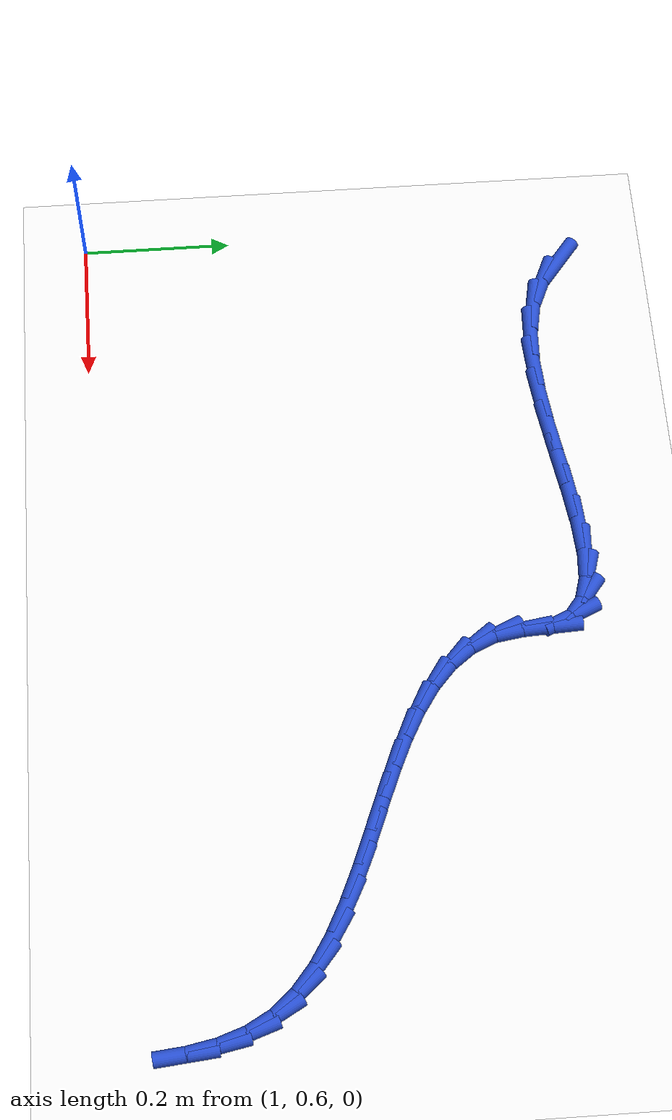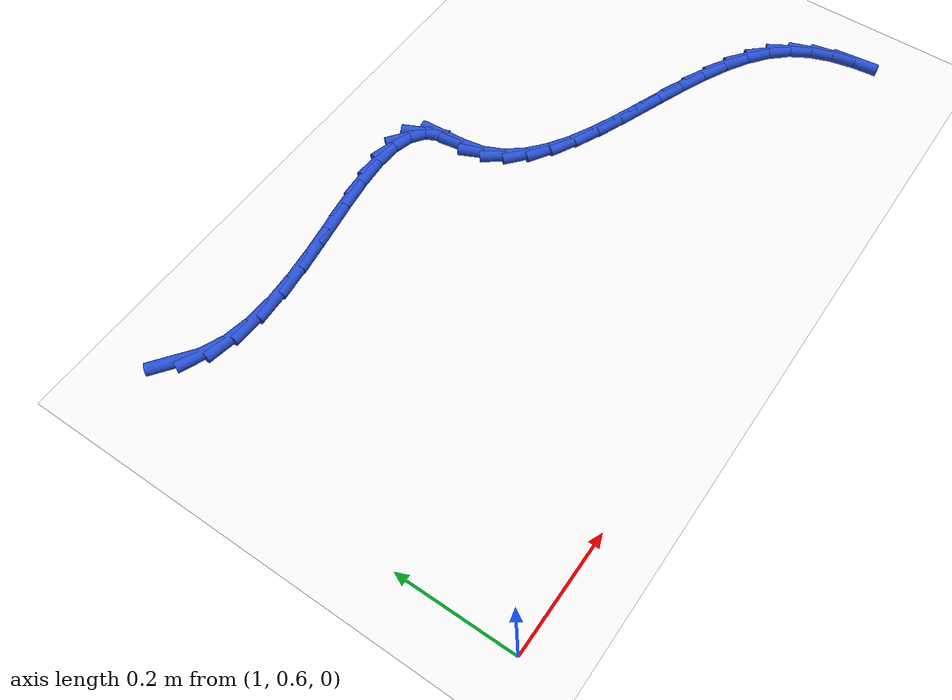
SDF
<sdf version="1.6">
 <world name="default">
  <model name="ground_plane">
   <static>1</static>
   <link name="link">
    <collision name="collision">
     <geometry><plane><normal>0 0 1</normal><size>100 100</size></plane></geometry>
     <surface><friction><ode><mu>100</mu><mu2>50</mu2></ode></friction></surface>
    </collision>
    <visual name="visual">
     <cast_shadows>0</cast_shadows>
     <geometry><plane><normal>0 0 1</normal><size>100 100</size></plane></geometry>
     <material>
      <script><uri>file://media/materials/scripts/gazebo.material</uri><name>Gazebo/WhiteGlow</name></script>
     </material>
    </visual>
   </link>
  </model>
  <model name="line">
   <link name="link_49">
    <pose>1.0672203175678752 1.2572058095918428 0.01 0 1.57 -0.6562181619540158</pose>
    <collision name="collision">
     <geometry><cylinder><radius>0.01</radius><length>0.08</length></cylinder></geometry>
    </collision>
    <visual name="visual">
     <material>
      <script><name>Gazebo/Blue</name><uri>file://media/materials/scripts/gazebo.material</uri></script>
     </material>
     <geometry><cylinder><radius>0.01</radius><length>0.08</length></cylinder></geometry>
    </visual>
   </link>
   <link name="link_50">
    <pose>1.0999426403726085 1.2320075650167843 0.01 0 1.57 -0.40077037514675196</pose>
    <collision name="collision">
     <geometry><cylinder><radius>0.01</radius><length>0.08</length></cylinder></geometry>
    </collision>
    <visual name="visual">
     <material>
      <script><name>Gazebo/Blue</name><uri>file://media/materials/scripts/gazebo.material</uri></script>
     </material>
     <geometry><cylinder><radius>0.01</radius><length>0.08</length></cylinder></geometry>
    </visual>
   </link>
   <link name="link_51">
    <pose>1.1389421458291702 1.2154834122471758 0.01 0 1.57 -0.18464626799693962</pose>
    <collision name="collision">
     <geometry><cylinder><radius>0.01</radius><length>0.08</length></cylinder></geometry>
    </collision>
    <visual name="visual">
     <material>
      <script><name>Gazebo/Blue</name><uri>file://media/materials/scripts/gazebo.material</uri></script>
     </material>
     <geometry><cylinder><radius>0.01</radius><length>0.08</length></cylinder></geometry>
    </visual>
   </link>
   <link name="link_52">
    <pose>1.1833641389090774 1.20718655024264 0.01 0 1.57 -0.035540415858139815</pose>
    <collision name="collision">
     <geometry><cylinder><radius>0.01</radius><length>0.08</length></cylinder></geometry>
    </collision>
    <visual name="visual">
     <material>
      <script><name>Gazebo/Blue</name><uri>file://media/materials/scripts/gazebo.material</uri></script>
     </material>
     <geometry><cylinder><radius>0.01</radius><length>0.08</length></cylinder></geometry>
    </visual>
   </link>
   <link name="link_53">
    <pose>1.231817720588235 1.2054637643764308 0.01 0 1.57 0.06251012044511524</pose>
    <collision name="collision">
     <geometry><cylinder><radius>0.01</radius><length>0.08</length></cylinder></geometry>
    </collision>
    <visual name="visual">
     <material>
      <script><name>Gazebo/Blue</name><uri>file://media/materials/scripts/gazebo.material</uri></script>
     </material>
     <geometry><cylinder><radius>0.01</radius><length>0.08</length></cylinder></geometry>
    </visual>
   </link>
   <link name="link_54">
    <pose>1.2829119918425473 1.2086618400218037 0.01 0 1.57 0.12290096199764607</pose>
    <collision name="collision">
     <geometry><cylinder><radius>0.01</radius><length>0.08</length></cylinder></geometry>
    </collision>
    <visual name="visual">
     <material>
      <script><name>Gazebo/Blue</name><uri>file://media/materials/scripts/gazebo.material</uri></script>
     </material>
     <geometry><cylinder><radius>0.01</radius><length>0.08</length></cylinder></geometry>
    </visual>
   </link>
   <link name="link_55">
    <pose>1.33525605364792 1.215127562552015 0.01 0 1.57 0.15356485314063414</pose>
    <collision name="collision">
     <geometry><cylinder><radius>0.01</radius><length>0.08</length></cylinder></geometry>
    </collision>
    <visual name="visual">
     <material>
      <script><name>Gazebo/Blue</name><uri>file://media/materials/scripts/gazebo.material</uri></script>
     </material>
     <geometry><cylinder><radius>0.01</radius><length>0.08</length></cylinder></geometry>
    </visual>
   </link>
   <link name="link_56">
    <pose>1.3874590069802577 1.223207717340319 0.01 0 1.57 0.15738540133013484</pose>
    <collision name="collision">
     <geometry><cylinder><radius>0.01</radius><length>0.08</length></cylinder></geometry>
    </collision>
    <visual name="visual">
     <material>
      <script><name>Gazebo/Blue</name><uri>file://media/materials/scripts/gazebo.material</uri></script>
     </material>
     <geometry><cylinder><radius>0.01</radius><length>0.08</length></cylinder></geometry>
    </visual>
   </link>
   <link name="link_57">
    <pose>1.4381299528154652 1.2312490897599708 0.01 0 1.57 0.13220108576649578</pose>
    <collision name="collision">
     <geometry><cylinder><radius>0.01</radius><length>0.08</length></cylinder></geometry>
    </collision>
    <visual name="visual">
     <material>
      <script><name>Gazebo/Blue</name><uri>file://media/materials/scripts/gazebo.material</uri></script>
     </material>
     <geometry><cylinder><radius>0.01</radius><length>0.08</length></cylinder></geometry>
    </visual>
   </link>
   <link name="link_58">
    <pose>1.485877992129447 1.237598465184226 0.01 0 1.57 0.0690558275595702</pose>
    <collision name="collision">
     <geometry><cylinder><radius>0.01</radius><length>0.08</length></cylinder></geometry>
    </collision>
    <visual name="visual">
     <material>
      <script><name>Gazebo/Blue</name><uri>file://media/materials/scripts/gazebo.material</uri></script>
     </material>
     <geometry><cylinder><radius>0.01</radius><length>0.08</length></cylinder></geometry>
    </visual>
   </link>
   <link name="link_59">
    <pose>1.5293122258981091 1.2406026289863399 0.01 0 1.57 -0.05280766492518197</pose>
    <collision name="collision">
     <geometry><cylinder><radius>0.01</radius><length>0.08</length></cylinder></geometry>
    </collision>
    <visual name="visual">
     <material>
      <script><name>Gazebo/Blue</name><uri>file://media/materials/scripts/gazebo.material</uri></script>
     </material>
     <geometry><cylinder><radius>0.01</radius><length>0.08</length></cylinder></geometry>
    </visual>
   </link>
   <link name="link_60">
    <pose>1.5670417550973552 1.2386083665395677 0.01 0 1.57 -0.275078118105675</pose>
    <collision name="collision">
     <geometry><cylinder><radius>0.01</radius><length>0.08</length></cylinder></geometry>
    </collision>
    <visual name="visual">
     <material>
      <script><name>Gazebo/Blue</name><uri>file://media/materials/scripts/gazebo.material</uri></script>
     </material>
     <geometry><cylinder><radius>0.01</radius><length>0.08</length></cylinder></geometry>
    </visual>
   </link>
   <link name="link_61">
    <pose>1.5976756807030914 1.2299624632171642 0.01 0 1.57 -0.6532594559871524</pose>
    <collision name="collision">
     <geometry><cylinder><radius>0.01</radius><length>0.08</length></cylinder></geometry>
    </collision>
    <visual name="visual">
     <material>
      <script><name>Gazebo/Blue</name><uri>file://media/materials/scripts/gazebo.material</uri></script>
     </material>
     <geometry><cylinder><radius>0.01</radius><length>0.08</length></cylinder></geometry>
    </visual>
   </link>
   <link name="link_62">
    <pose>1.6198231036912216 1.2130117043923851 0.01 0 1.57 -1.1429764644281766</pose>
    <collision name="collision">
     <geometry><cylinder><radius>0.01</radius><length>0.08</length></cylinder></geometry>
    </collision>
    <visual name="visual">
     <material>
      <script><name>Gazebo/Blue</name><uri>file://media/materials/scripts/gazebo.material</uri></script>
     </material>
     <geometry><cylinder><radius>0.01</radius><length>0.08</length></cylinder></geometry>
    </visual>
   </link>
   <link name="link_63">
    <pose>1.6320931250376516 1.1861028754384857 0.01 0 1.57 -1.5152868558405679</pose>
    <collision name="collision">
     <geometry><cylinder><radius>0.01</radius><length>0.08</length></cylinder></geometry>
    </collision>
    <visual name="visual">
     <material>
      <script><name>Gazebo/Blue</name><uri>file://media/materials/scripts/gazebo.material</uri></script>
     </material>
     <geometry><cylinder><radius>0.01</radius><length>0.08</length></cylinder></geometry>
    </visual>
   </link>
   <link name="link_64">
    <pose>1.6341835272876277 1.148483083359861 0.01 0 1.57 -1.4110343284002256</pose>
    <collision name="collision">
     <geometry><cylinder><radius>0.01</radius><length>0.08</length></cylinder></geometry>
    </collision>
    <visual name="visual">
     <material>
      <script><name>Gazebo/Blue</name><uri>file://media/materials/scripts/gazebo.material</uri></script>
     </material>
     <geometry><cylinder><radius>0.01</radius><length>0.08</length></cylinder></geometry>
    </visual>
   </link>
   <link name="link_65">
    <pose>1.6401530991693167 1.1114361235220958 0.01 0 1.57 -1.1466124579136072</pose>
    <collision name="collision">
     <geometry><cylinder><radius>0.01</radius><length>0.08</length></cylinder></geometry>
    </collision>
    <visual name="visual">
     <material>
      <script><name>Gazebo/Blue</name><uri>file://media/materials/scripts/gazebo.material</uri></script>
     </material>
     <geometry><cylinder><radius>0.01</radius><length>0.08</length></cylinder></geometry>
    </visual>
   </link>
   <link name="link_66">
    <pose>1.6547615648742007 1.0790878977538305 0.01 0 1.57 -0.9067483306468204</pose>
    <collision name="collision">
     <geometry><cylinder><radius>0.01</radius><length>0.08</length></cylinder></geometry>
    </collision>
    <visual name="visual">
     <material>
      <script><name>Gazebo/Blue</name><uri>file://media/materials/scripts/gazebo.material</uri></script>
     </material>
     <geometry><cylinder><radius>0.01</radius><length>0.08</length></cylinder></geometry>
    </visual>
   </link>
   <link name="link_67">
    <pose>1.6768899941974564 1.0508127893125991 0.01 0 1.57 -0.7161302595935948</pose>
    <collision name="collision">
     <geometry><cylinder><radius>0.01</radius><length>0.08</length></cylinder></geometry>
    </collision>
    <visual name="visual">
     <material>
      <script><name>Gazebo/Blue</name><uri>file://media/materials/scripts/gazebo.material</uri></script>
     </material>
     <geometry><cylinder><radius>0.01</radius><length>0.08</length></cylinder></geometry>
    </visual>
   </link>
   <link name="link_68">
    <pose>1.70541945693426 1.025985181455934 0.01 0 1.57 -0.5769614406630278</pose>
    <collision name="collision">
     <geometry><cylinder><radius>0.01</radius><length>0.08</length></cylinder></geometry>
    </collision>
    <visual name="visual">
     <material>
      <script><name>Gazebo/Blue</name><uri>file://media/materials/scripts/gazebo.material</uri></script>
     </material>
     <geometry><cylinder><radius>0.01</radius><length>0.08</length></cylinder></geometry>
    </visual>
   </link>
   <link name="link_69">
    <pose>1.7392310228797896 1.0039794574413676 0.01 0 1.57 -0.48081585905420776</pose>
    <collision name="collision">
     <geometry><cylinder><radius>0.01</radius><length>0.08</length></cylinder></geometry>
    </collision>
    <visual name="visual">
     <material>
      <script><name>Gazebo/Blue</name><uri>file://media/materials/scripts/gazebo.material</uri></script>
     </material>
     <geometry><cylinder><radius>0.01</radius><length>0.08</length></cylinder></geometry>
    </visual>
   </link>
   <link name="link_70">
    <pose>1.7772057618292223 0.9841700005264339 0.01 0 1.57 -0.41839019183325976</pose>
    <collision name="collision">
     <geometry><cylinder><radius>0.01</radius><length>0.08</length></cylinder></geometry>
    </collision>
    <visual name="visual">
     <material>
      <script><name>Gazebo/Blue</name><uri>file://media/materials/scripts/gazebo.material</uri></script>
     </material>
     <geometry><cylinder><radius>0.01</radius><length>0.08</length></cylinder></geometry>
    </visual>
   </link>
   <link name="link_71">
    <pose>1.818224743577733 0.9659311939686651 0.01 0 1.57 -0.3828339101777194</pose>
    <collision name="collision">
     <geometry><cylinder><radius>0.01</radius><length>0.08</length></cylinder></geometry>
    </collision>
    <visual name="visual">
     <material>
      <script><name>Gazebo/Blue</name><uri>file://media/materials/scripts/gazebo.material</uri></script>
     </material>
     <geometry><cylinder><radius>0.01</radius><length>0.08</length></cylinder></geometry>
    </visual>
   </link>
   <link name="link_72">
    <pose>1.8611690379205006 0.9486374210255941 0.01 0 1.57 -0.37010093034722474</pose>
    <collision name="collision">
     <geometry><cylinder><radius>0.01</radius><length>0.08</length></cylinder></geometry>
    </collision>
    <visual name="visual">
     <material>
      <script><name>Gazebo/Blue</name><uri>file://media/materials/scripts/gazebo.material</uri></script>
     </material>
     <geometry><cylinder><radius>0.01</radius><length>0.08</length></cylinder></geometry>
    </visual>
   </link>
   <link name="link_73">
    <pose>1.9049197146527022 0.9316630649547545 0.01 0 1.57 -0.37862564516977365</pose>
    <collision name="collision">
     <geometry><cylinder><radius>0.01</radius><length>0.08</length></cylinder></geometry>
    </collision>
    <visual name="visual">
     <material>
      <script><name>Gazebo/Blue</name><uri>file://media/materials/scripts/gazebo.material</uri></script>
     </material>
     <geometry><cylinder><radius>0.01</radius><length>0.08</length></cylinder></geometry>
    </visual>
   </link>
   <link name="link_74">
    <pose>1.9483578435695141 0.9143825090136786 0.01 0 1.57 -0.40909802433608966</pose>
    <collision name="collision">
     <geometry><cylinder><radius>0.01</radius><length>0.08</length></cylinder></geometry>
    </collision>
    <visual name="visual">
     <material>
      <script><name>Gazebo/Blue</name><uri>file://media/materials/scripts/gazebo.material</uri></script>
     </material>
     <geometry><cylinder><radius>0.01</radius><length>0.08</length></cylinder></geometry>
    </visual>
   </link>
   <link name="link_75">
    <pose>1.9903644944661125 0.8961701364598993 0.01 0 1.57 -0.4644924325800157</pose>
    <collision name="collision">
     <geometry><cylinder><radius>0.01</radius><length>0.08</length></cylinder></geometry>
    </collision>
    <visual name="visual">
     <material>
      <script><name>Gazebo/Blue</name><uri>file://media/materials/scripts/gazebo.material</uri></script>
     </material>
     <geometry><cylinder><radius>0.01</radius><length>0.08</length></cylinder></geometry>
    </visual>
   </link>
   <link name="link_76">
    <pose>2.029820737137676 0.8764003305509502 0.01 0 1.57 -0.5502379558430582</pose>
    <collision name="collision">
     <geometry><cylinder><radius>0.01</radius><length>0.08</length></cylinder></geometry>
    </collision>
    <visual name="visual">
     <material>
      <script><name>Gazebo/Blue</name><uri>file://media/materials/scripts/gazebo.material</uri></script>
     </material>
     <geometry><cylinder><radius>0.01</radius><length>0.08</length></cylinder></geometry>
    </visual>
   </link>
   <link name="link_77">
    <pose>2.0656076413793802 0.8544474745443636 0.01 0 1.57 -0.6740051183435536</pose>
    <collision name="collision">
     <geometry><cylinder><radius>0.01</radius><length>0.08</length></cylinder></geometry>
    </collision>
    <visual name="visual">
     <material>
      <script><name>Gazebo/Blue</name><uri>file://media/materials/scripts/gazebo.material</uri></script>
     </material>
     <geometry><cylinder><radius>0.01</radius><length>0.08</length></cylinder></geometry>
    </visual>
   </link>
   <link name="link_78">
    <pose>2.0966062769864022 0.829685951697673 0.01 0 1.57 -0.8435896671424435</pose>
    <collision name="collision">
     <geometry><cylinder><radius>0.01</radius><length>0.08</length></cylinder></geometry>
    </collision>
    <visual name="visual">
     <material>
      <script><name>Gazebo/Blue</name><uri>file://media/materials/scripts/gazebo.material</uri></script>
     </material>
     <geometry><cylinder><radius>0.01</radius><length>0.08</length></cylinder></geometry>
    </visual>
   </link>
   <link name="link_79">
    <pose>2.1216977137539197 0.8014901452684107 0.01 0 1.57 -1.0490977382816173</pose>
    <collision name="collision">
     <geometry><cylinder><radius>0.01</radius><length>0.08</length></cylinder></geometry>
    </collision>
    <visual name="visual">
     <material>
      <script><name>Gazebo/Blue</name><uri>file://media/materials/scripts/gazebo.material</uri></script>
     </material>
     <geometry><cylinder><radius>0.01</radius><length>0.08</length></cylinder></geometry>
    </visual>
   </link>
   <link name="link_80">
    <pose>2.1401219643023475 0.7694379065475518 0.01 0 1.57 -1.2315764836979721</pose>
    <collision name="collision">
     <geometry><cylinder><radius>0.01</radius><length>0.08</length></cylinder></geometry>
    </collision>
    <visual name="visual">
     <material>
      <script><name>Gazebo/Blue</name><uri>file://media/materials/scripts/gazebo.material</uri></script>
     </material>
     <geometry><cylinder><radius>0.01</radius><length>0.08</length></cylinder></geometry>
    </visual>
   </link>
   <link name="link_81">
    <pose>2.1526378432931055 0.733968025233923 0.01 0 1.57 -1.3702893811484587</pose>
    <collision name="collision">
     <geometry><cylinder><radius>0.01</radius><length>0.08</length></cylinder></geometry>
    </collision>
    <visual name="visual">
     <material>
      <script><name>Gazebo/Blue</name><uri>file://media/materials/scripts/gazebo.material</uri></script>
     </material>
     <geometry><cylinder><radius>0.01</radius><length>0.08</length></cylinder></geometry>
    </visual>
   </link>
   <link name="link_82">
    <pose>2.160405810078929 0.695746964766396 0.01 0 1.57 -1.4674458425274255</pose>
    <collision name="collision">
     <geometry><cylinder><radius>0.01</radius><length>0.08</length></cylinder></geometry>
    </collision>
    <visual name="visual">
     <material>
      <script><name>Gazebo/Blue</name><uri>file://media/materials/scripts/gazebo.material</uri></script>
     </material>
     <geometry><cylinder><radius>0.01</radius><length>0.08</length></cylinder></geometry>
    </visual>
   </link>
  </model>
 </world>
</sdf>
